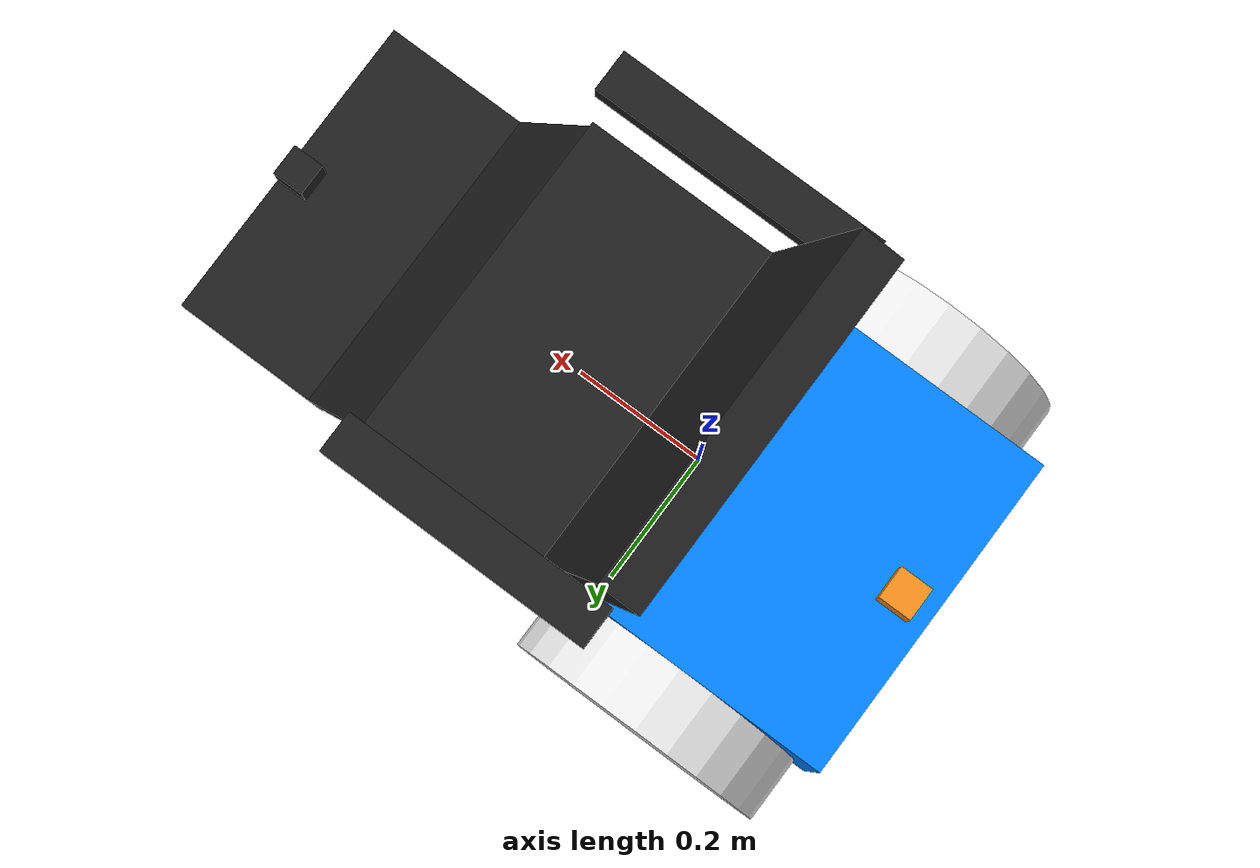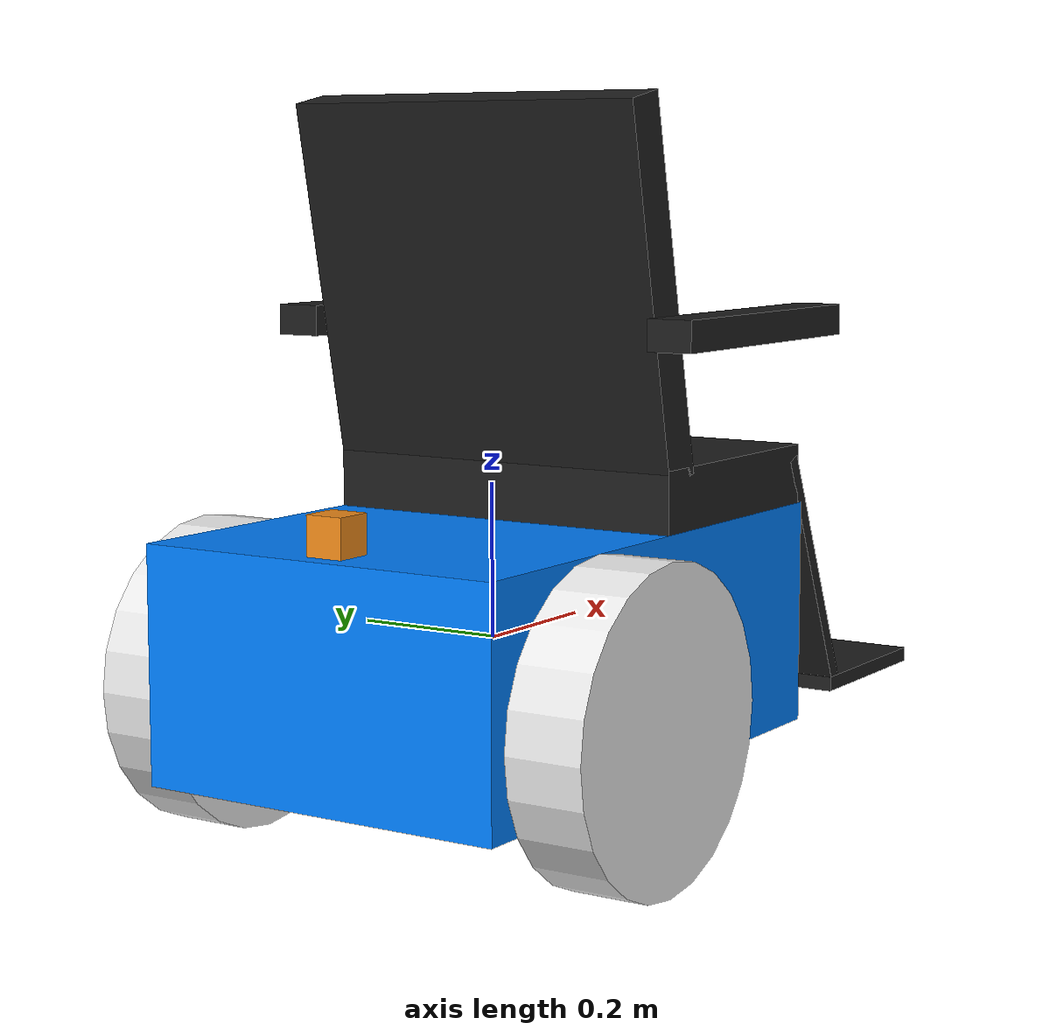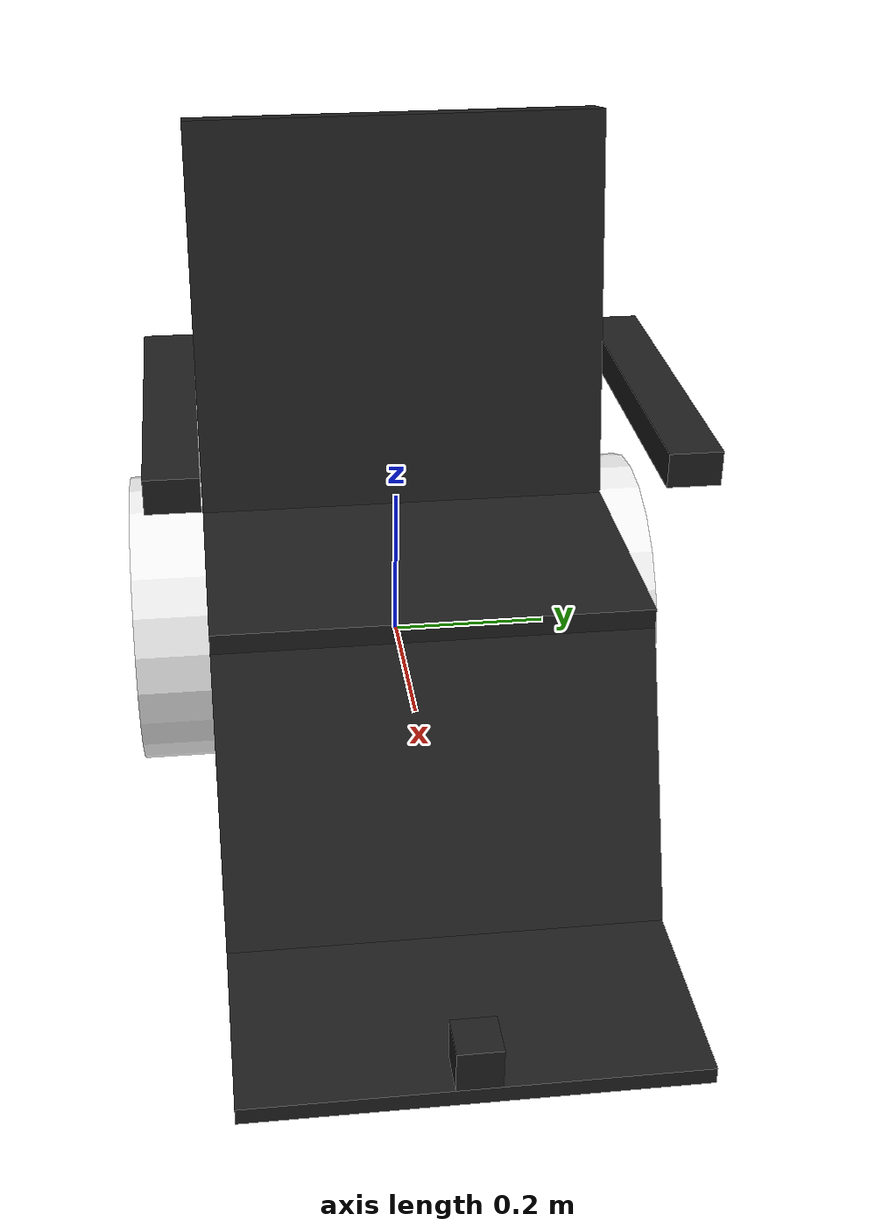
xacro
<?xml version="1.0"?>
<robot name="wchair" xmlns:xacro="http://www.ros.org/wiki/xacro">
<xacro:include filename="$(find ros_ag)/urdf/w.urdf.xacro" />
	<!-- PROPERTY LIST -->
	<property name="M_PI" value="3.1415926535897931" />
	<property name="base_x" value="0.75" />
	<property name="base_y" value="0.5" />
	<property name="base_z" value="0.30" />
	<property name="base_mass" value="5.0"/>
	<property name="caster_radius" value="0.1"/>
	<property name="caster_mass" value="0.5"/>

	<property name="hokuyo_size" value="0.05"/>
	<property name="imu_size" value="0.05"/>

	<property name="rate_sensor" value="1.0"/>

	<!-- Base Link -->
	<link name="base_link">
		<visual>
			<origin xyz="0 0 0" rpy="0 0 0" />
			<geometry><box size="${base_x} ${base_y} ${base_z}"/></geometry>
			<material name="blue"><color rgba="0 0.5 1 1"/></material>
		</visual>
		<!-- Base collision -->
		<collision>
			<origin xyz="0 0 0" rpy="0 0 0" />
			<geometry><box size="${base_x} ${base_y} ${base_z}"/></geometry>
		</collision>
		<inertial>
			<mass value="${base_mass}"/>
			<inertia ixx="0.13" ixy="0.0" ixz="0.0" iyx="0.0" iyy="0.21" iyz="0.0" izx="0.0" izy="0.0" izz="0.13"/>
		</inertial>
	</link>
	<gazebo reference="base_link">
		<material>Gazebo/SkyBlue</material>
	</gazebo>
	<!-- Caster -->
	<link name="caster_link">
		<visual>
			<origin xyz="0 0 0" rpy="0 0 0" />
			<geometry><sphere radius="${caster_radius}" /></geometry>
			<material name="White" />
		</visual>
		<!-- Caster collision -->
		<collision>
			<origin xyz="0 0 0" rpy="0 0 0" />
			<geometry><sphere radius="${caster_radius}" /></geometry>
		</collision>
		<inertial>
			<mass value="${caster_mass}"/>
			<inertia ixx="0.0001" ixy="0.0" ixz="0.0" iyy="0.0001" iyz="0.0" izz="0.0001"/>
		</inertial>
	</link>
	<joint name="caster_joint" type="continuous">
    	<parent link="base_link"/>
    	<child link="caster_link"/>
    	<origin xyz="0.25 0 -0.15" rpy="0 0 0" />
    	<axis xyz="0 0 1" />
  	</joint>
  	<gazebo reference="caster_link">
  		<material>Gazebo/Grey</material>
  	</gazebo>
	<!-- Wheels-->
	<wheel lr="right" parent="base_link" translateX="-0.15" translateY="-0.3" translateZ="-0.05" flipY="1" />
	<wheel lr="left" parent="base_link" translateX="-0.15" translateY="0.3" translateZ="-0.05" flipY="1" />
	<!-- PEDANE -->
	<link name="pedana1">
		<visual>
			<origin xyz="0 0 0" rpy="0 0 0" />
			<geometry><box size="0.02 0.5 0.35" /></geometry>
			<material name="Black"/>
		</visual>
		<collision>
			<origin xyz="0 0 0" rpy="0 0 0" />
			<geometry><box size="0.02 0.5 0.35" /></geometry>
		</collision>
	</link>
	<joint name="joint_pedana1" type="fixed">
		<parent link="base_link"/>
		<child link="pedana1"/>
		<origin xyz="0.42 0 0.05" rpy="0 -0.40 0" />
	</joint>
	<gazebo reference="pedana1">
  		<material>Gazebo/DarkGrey</material>
  	</gazebo>
	<!-- PEDANA 2 -->
	<link name="pedana2">
		<visual>
			<origin xyz="0 0 0" rpy="0 0 0" />
			<geometry><box size="0.25 0.5 0.02" /></geometry>
			<material name="Black"/>
		</visual>
		<collision>
			<origin xyz="0 0 0" rpy="0 0 0" />
			<geometry><box size="0.25 0.5 0.02"  /></geometry>
		</collision>
	</link>
	<joint name="joint_pedana2" type="fixed">
		<parent link="base_link"/>
		<child link="pedana2"/>
		<origin xyz="0.60 0 -0.12" rpy="0 0 0" />
	</joint>
	<gazebo reference="pedana2">
  		<material>Gazebo/DarkGrey</material>
  	</gazebo>
	<!-- SEDILE -->
	<link name="sedile">
		<visual>
			<origin xyz="0 0 0" rpy="0 0 0" />
			<geometry><box size="0.35 0.5 0.08" /></geometry>
			<material name="Black"/>
		</visual>
		<collision>
			<origin xyz="0 0 0" rpy="0 0 0" />
			<geometry><box size="0.35 0.5 0.08" /></geometry>
		</collision>
	</link>
	<joint name="joint_sedile" type="fixed">
		<parent link="base_link"/>
		<child link="sedile"/>
		<origin xyz="0.19 0 0.19" rpy="0 0 0" />
	</joint>
	<gazebo reference="sedile">
  		<material>Gazebo/DarkGrey</material>
  	</gazebo>
	<!-- SCHIENALE -->
	<link name="schienale">
		<visual>
			<origin xyz="0 0 0" rpy="0 0 0" />
			<geometry><box size="0.06 0.5 0.48" /></geometry>
			<material name="Black"/>
		</visual>
		<collision>
			<origin xyz="0 0 0" rpy="0 0 0" />
			<geometry><box size="0.06 0.5 0.48" /></geometry>
		</collision>
	</link>
	<joint name="joint_schienale" type="fixed">
		<parent link="base_link"/>
		<child link="schienale"/>
		<origin xyz="0 0 0.45" rpy="0 -0.2 0" />
	</joint>
	<gazebo reference="schienale">
  		<material>Gazebo/DarkGrey</material>
  	</gazebo>
	<!-- BRACCIOLO DX-->
	<link name="bracciolo_dx">
		<visual>
			<origin xyz="0 0 0" rpy="0 0 0" />
			<geometry><box size="0.40 0.06 0.04" /></geometry>
			<material name="Black"/>
		</visual>
		<collision>
			<origin xyz="0 0 0" rpy="0 0 0" />
			<geometry><box size="0.40 0.06 0.04" /></geometry>
		</collision>
	</link>
	<joint name="joint_bracciolo_dx" type="fixed">
		<parent link="base_link"/>
		<child link="bracciolo_dx"/>
		<origin xyz="0.16 -0.28 0.4" rpy="0 0 0" />
	</joint>
	<gazebo reference="bracciolo_dx">
  		<material>Gazebo/DarkGrey</material>
  	</gazebo>
	<!-- BRACCIOLO SX-->
	<link name="bracciolo_sx">
		<visual>
			<origin xyz="0 0 0" rpy="0 0 0" />
			<geometry><box size="0.40 0.06 0.04" /></geometry>
			<material name="Black"/>
		</visual>
		<collision>
			<origin xyz="0 0 0" rpy="0 0 0" />
			<geometry><box size="0.40 0.06 0.04" /></geometry>
		</collision>
	</link>
	<joint name="joint_bracciolo_sx" type="fixed">
		<parent link="base_link"/>
		<child link="bracciolo_sx"/>
		<origin xyz="0.16 0.28 0.4" rpy="0 0 0" />
	</joint>
	<gazebo reference="bracciolo_sx">
  		<material>Gazebo/DarkGrey</material>
  	</gazebo>
	<!-- SENSORS -->
	<!-- hokuyo -->
	<link name="hokuyo_link">
		<visual>
			<origin xyz="0 0 0" rpy="0 0 0" />
			<geometry><box size="${hokuyo_size} ${hokuyo_size} ${hokuyo_size}"/></geometry>
			<material name="Black" />
		</visual>
	</link>
	<joint name="hokuyo_joint" type="fixed">
		<origin xyz="0.7 0 -0.085" rpy="0 0 0" />
		<parent link="base_link"/>
		<child link="hokuyo_link" />
	</joint>
	<gazebo reference="hokuyo_link">
		<material>Gazebo/Black</material>
		<sensor type="ray" name="head_hokuyo_sensor">
			<pose>${hokuyo_size/2} 0 0 0 0 0</pose>
			<visualize>false</visualize>
			<update_rate>${rate_sensor}</update_rate>
			<ray>
				<scan>
					<horizontal>
						<samples>720</samples>
						<resolution>1</resolution>
						<min_angle>-1.570796</min_angle>
						<max_angle>1.570796</max_angle>
					</horizontal>
				</scan>
				<range>
					<min>0.10</min>
					<max>10.0</max>
					<resolution>0.001</resolution>
				</range>
			</ray>
			<plugin name="gazebo_ros_head_hokuyo_controller" filename="libgazebo_ros_laser.so">
				<topicName>/scan</topicName>
				<frameName>hokuyo_link</frameName>
			</plugin>
		</sensor>
	</gazebo>

	<!-- SENSORS imu -->
	<link name="imu_link">
  		<visual>
    		<origin rpy="0 0 0" xyz="0 0 0"/>
      		<geometry><box size="0.05 0.05 0.05"/></geometry>
			<material name="Orange" />
  		</visual>
	</link>
	<joint name="imu_joint" type="fixed">
    	<origin xyz="${-base_x/2 + hokuyo_size} 0 ${base_z/2+hokuyo_size/2}"/>
    	<parent link="base_link"/>
    	<child link="imu_link"/>
  	</joint>
	<gazebo reference="imu_link">
		<material>Gazebo/Orange</material>
		<sensor name="imu_sensor" type="imu">
			<imu>
          <angular_velocity>
            <x>
              <noise type="gaussian">
                <mean>0.0</mean>
                <stddev>2e-4</stddev>
                <bias_mean>0.0000075</bias_mean>
                <bias_stddev>0.0000008</bias_stddev>
              </noise>
            </x>
            <y>
              <noise type="gaussian">
                <mean>0.0</mean>
                <stddev>2e-4</stddev>
                <bias_mean>0.0000075</bias_mean>
                <bias_stddev>0.0000008</bias_stddev>
              </noise>
            </y>
            <z>
              <noise type="gaussian">
                <mean>0.0</mean>
                <stddev>2e-4</stddev>
                <bias_mean>0.0000075</bias_mean>
                <bias_stddev>0.0000008</bias_stddev>
              </noise>
            </z>
          </angular_velocity>
          <linear_acceleration>
            <x>
              <noise type="gaussian">
                <mean>0.0</mean>
                <stddev>1.7e-2</stddev>
                <bias_mean>0.1</bias_mean>
                <bias_stddev>0.001</bias_stddev>
              </noise>
            </x>
            <y>
              <noise type="gaussian">
                <mean>0.0</mean>
                <stddev>1.7e-2</stddev>
                <bias_mean>0.1</bias_mean>
                <bias_stddev>0.001</bias_stddev>
              </noise>
            </y>
            <z>
              <noise type="gaussian">
                <mean>0.0</mean>
                <stddev>1.7e-2</stddev>
                <bias_mean>0.1</bias_mean>
                <bias_stddev>0.001</bias_stddev>
              </noise>
            </z>
          </linear_acceleration>
        </imu>
			<pose>0 0 0 0 0 0</pose>
			<update_rate>${rate_sensor}</update_rate>
    		<plugin name="imu_plugin" filename="libgazebo_ros_imu_sensor.so">
    	  		<topicName>/imu</topicName>
    	  		<frameName>imu_link</frameName>
    		</plugin>
    	</sensor>
  	</gazebo>
	<!-- Differential drive controller  -->
	<!-- Per muove il robot in Gazebo dobbiamo aggiungere questo plugin "libgazebo_ros_diff_drive.so" -->
	<gazebo>
		<plugin name="differential_drive_controller" filename="libgazebo_ros_diff_drive.so">
			<rosDebugLevel>Debug</rosDebugLevel>
			<publishWheelTF>false</publishWheelTF>
			<robotNamespace>/</robotNamespace>
			<publishTf>1</publishTf>
			<publishWheelJointState>false</publishWheelJointState>
			<alwaysOn>true</alwaysOn>
			<updateRate>100.0</updateRate>
			<leftJoint>left_wheel_joint</leftJoint>
			<rightJoint>right_wheel_joint</rightJoint>
			<wheelSeparation>${base_y}</wheelSeparation>
			<wheelDiameter>${2*wheel_radius}</wheelDiameter>
			<broadcastTF>1</broadcastTF>
			<wheelTorque>30</wheelTorque>
			<wheelAcceleration>1.8</wheelAcceleration>
			<commandTopic>cmd_vel</commandTopic> <!-- Topic importante per per pubblicarci il messaggio di tipo Twist-->
			<odometryFrame>odom</odometryFrame>
			<odometryTopic>odom</odometryTopic>
			<robotBaseFrame>base_link</robotBaseFrame>
		</plugin>
	</gazebo>
</robot>

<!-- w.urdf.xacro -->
<robot name="wheel"  xmlns:xacro="http://www.ros.org/wiki/xacro">

	<!-- Wheels -->
	<property name="wheel_radius" value="0.2" />
	<property name="wheel_height" value="0.1" />
	<property name="wheel_mass" value="1" /> <!-- in kg-->

	<macro name="cylinder_inertia" params="m r h">
		<inertia  ixx="${m*(3*r*r+h*h)/12}" ixy = "0" ixz = "0" iyy="${m*(3*r*r+h*h)/12}" iyz = "0" izz="${m*r*r/2}" />
	</macro>

	<xacro:macro name="wheel" params="lr parent translateX translateY translateZ flipY"> <!-- lr: left, right -->
		<link name="${lr}_wheel">
		<visual>
			<origin xyz="0 0 0" rpy="${flipY*M_PI/2} 0  0 " />
			<geometry>
				<cylinder length="${wheel_height}" radius="${wheel_radius}" />
			</geometry>
			<material name="White" />
		</visual>
		<collision>
			<origin xyz="0 0 0" rpy="${flipY} 0 0" />
			<geometry><cylinder length="${wheel_height}" radius="${wheel_radius}" /></geometry>
		</collision>
		<inertial>
			<mass value="${wheel_mass}" />
			<origin xyz="0 0 0" />
			<cylinder_inertia  m="${wheel_mass}" r="${wheel_radius}" h="${wheel_height}" />
		</inertial>
	</link>

	<gazebo reference="${lr}_wheel">
		<material>Gazebo/Grey</material>
		<mu1 value="1.0"/>
		<mu2 value="1.0"/>
		<kp value="10000000.0"/>
		<kd value="1.0"/>
	</gazebo>

	<joint name="${lr}_wheel_joint" type="continuous">
		<parent link="${parent}"/>
		<child link="${lr}_wheel"/>
		<origin xyz="${translateX} ${translateY} ${translateZ}" rpy="0 0 0" />
		<axis xyz="0 1 0" />
		<limit effort="100.0" lower="0.0" upper="0.0" velocity="100"/>
		<joint_properties damping="0.0" friction="0.0"/>
	</joint>

	<!-- Transmission is important to link the joints and the controller -->
	<transmission name="${lr}_wheel_joint_trans">
		<type>transmission_interface/SimpleTransmission</type>
		<joint name="${lr}_wheel_joint" />
		<actuator name="${lr}_wheel_joint_motor">
			<hardwareInterface>EffortJointInterface</hardwareInterface>
			<mechanicalReduction>1</mechanicalReduction>
		</actuator>
    </transmission>

    </xacro:macro>
</robot>
